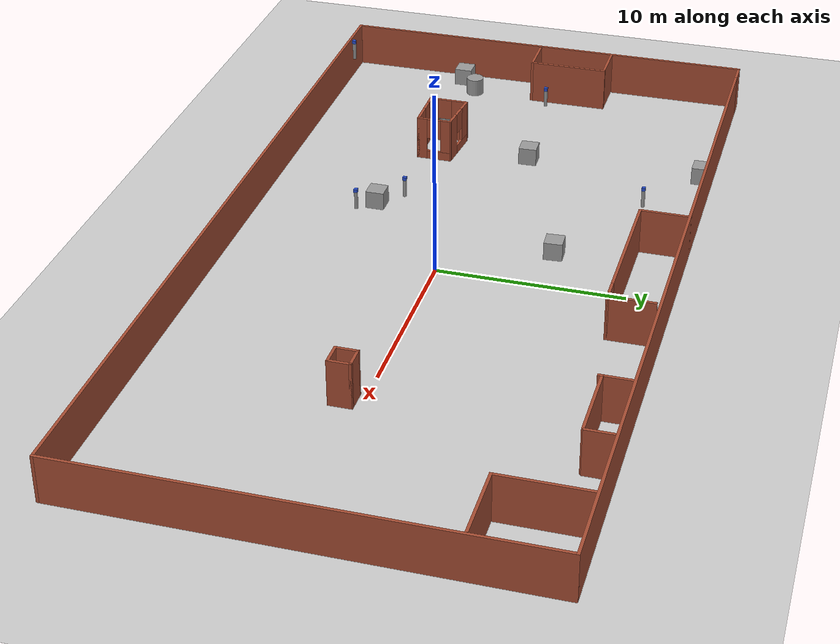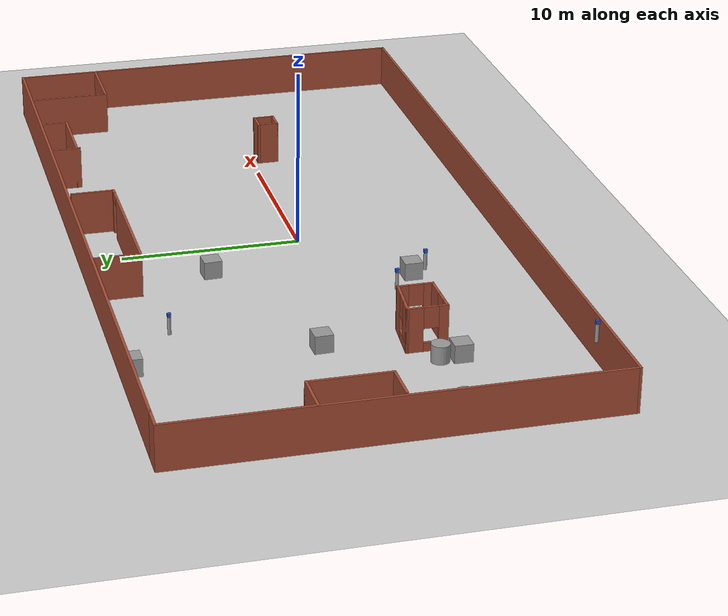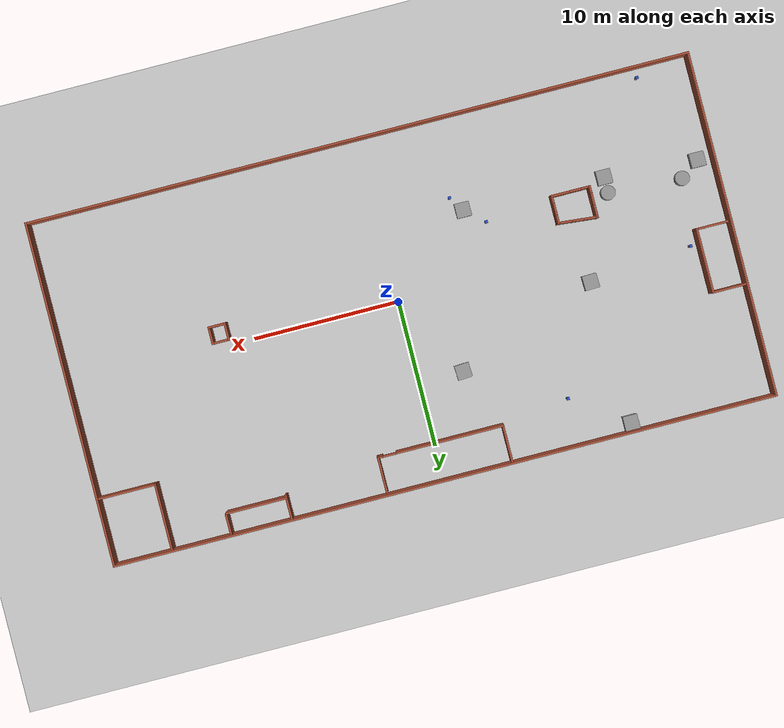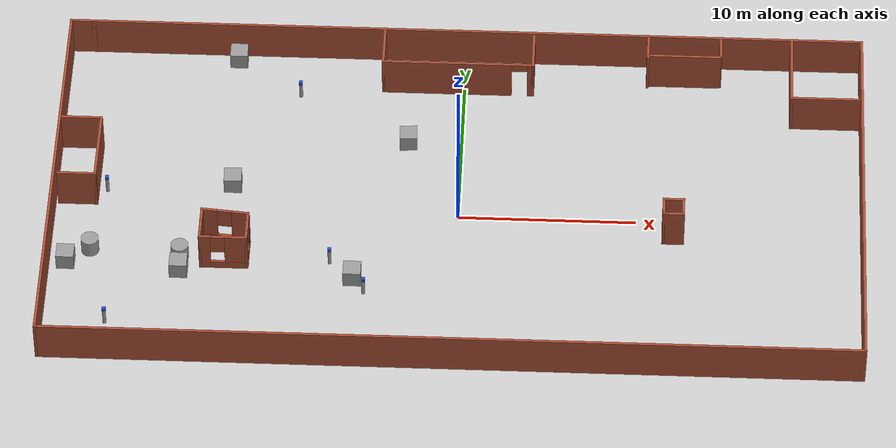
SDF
<sdf version="1.7">
 <world name="simulate_indoor">
  <model name="ground_plane">
   <static>1</static>
   <link name="link">
    <collision name="collision">
     <geometry><plane><normal>0 0 1</normal><size>100 100</size></plane></geometry>
     <surface>
      <contact><collide_bitmask>65535</collide_bitmask></contact>
      <friction><ode><mu>100</mu><mu2>50</mu2></ode></friction>
     </surface>
    </collision>
    <visual name="visual">
     <cast_shadows>0</cast_shadows>
     <geometry><plane><normal>0 0 1</normal><size>100 100</size></plane></geometry>
     <material>
      <script><uri>file://media/materials/scripts/gazebo.material</uri><name>Gazebo/Grey</name></script>
     </material>
    </visual>
   </link>
  </model>
  <model name="building_3">
   <pose>-0.060718 0.5346 0 0 -0 0</pose>
   <link name="Wall_0">
    <collision name="Wall_0_Collision">
     <geometry><box><size>44.5 0.15 2.5</size></box></geometry>
     <pose>0 0 1.25 0 -0 0</pose>
    </collision>
    <visual name="Wall_0_Visual">
     <pose>0 0 1.25 0 -0 0</pose>
     <geometry><box><size>44.5 0.15 2.5</size></box></geometry>
     <material>
      <script><uri>file://media/materials/scripts/gazebo.material</uri><name>Gazebo/Bricks</name></script>
      <ambient>1 1 1 1</ambient>
     </material>
     <meta><layer>0</layer></meta>
    </visual>
    <pose>0.624999 11.8 0 0 -0 0</pose>
   </link>
   <link name="Wall_1">
    <collision name="Wall_1_Collision">
     <geometry><box><size>23.75 0.15 2.5</size></box></geometry>
     <pose>0 0 1.25 0 -0 0</pose>
    </collision>
    <visual name="Wall_1_Visual">
     <pose>0 0 1.25 0 -0 0</pose>
     <geometry><box><size>23.75 0.15 2.5</size></box></geometry>
     <material>
      <script><uri>file://media/materials/scripts/gazebo.material</uri><name>Gazebo/Bricks</name></script>
      <ambient>1 1 1 1</ambient>
     </material>
     <meta><layer>0</layer></meta>
    </visual>
    <pose>22.8 0 0 0 -0 -1.5708</pose>
   </link>
   <link name="Wall_10">
    <collision name="Wall_10_Collision">
     <geometry><box><size>2.5 0.15 2.5</size></box></geometry>
     <pose>0 0 1.25 0 -0 0</pose>
    </collision>
    <visual name="Wall_10_Visual">
     <pose>0 0 1.25 0 -0 0</pose>
     <geometry><box><size>2.5 0.15 2.5</size></box></geometry>
     <material>
      <script><uri>file://media/materials/scripts/gazebo.material</uri><name>Gazebo/Bricks</name></script>
      <ambient>1 1 1 1</ambient>
     </material>
     <meta><layer>0</layer></meta>
    </visual>
    <pose>3.95679 10.375 0 0 -0 1.5708</pose>
   </link>
   <link name="Wall_17">
    <collision name="Wall_17_Collision">
     <geometry><box><size>4.75 0.15 2.5</size></box></geometry>
     <pose>0 0 1.25 0 -0 0</pose>
    </collision>
    <visual name="Wall_17_Visual">
     <pose>0 0 1.25 0 -0 0</pose>
     <geometry><box><size>4.75 0.15 2.5</size></box></geometry>
     <material>
      <script><uri>file://media/materials/scripts/gazebo.material</uri><name>Gazebo/Bricks</name></script>
      <ambient>1 1 1 1</ambient>
     </material>
     <meta><layer>0</layer></meta>
    </visual>
    <pose>18.7909 9.5 0 0 -0 -1.5708</pose>
   </link>
   <link name="Wall_18">
    <collision name="Wall_18_Collision">
     <geometry><box><size>4 0.15 2.5</size></box></geometry>
     <pose>0 0 1.25 0 -0 0</pose>
    </collision>
    <visual name="Wall_18_Visual">
     <pose>0 0 1.25 0 -0 0</pose>
     <geometry><box><size>4 0.15 2.5</size></box></geometry>
     <material>
      <script><uri>file://media/materials/scripts/gazebo.material</uri><name>Gazebo/Bricks</name></script>
      <ambient>1 1 1 1</ambient>
     </material>
     <meta><layer>0</layer></meta>
    </visual>
    <pose>20.7159 7.2 0 0 -0 0</pose>
   </link>
   <link name="Wall_2">
    <collision name="Wall_2_Collision">
     <geometry><box><size>45.75 0.15 2.5</size></box></geometry>
     <pose>0 0 1.25 0 -0 0</pose>
    </collision>
    <visual name="Wall_2_Visual">
     <pose>0 0 1.25 0 -0 0</pose>
     <geometry><box><size>45.75 0.15 2.5</size></box></geometry>
     <material>
      <script><uri>file://media/materials/scripts/gazebo.material</uri><name>Gazebo/Bricks</name></script>
      <ambient>1 1 1 1</ambient>
     </material>
     <meta><layer>0</layer></meta>
    </visual>
    <pose>-1e-06 -11.8 0 0 -0 3.14159</pose>
   </link>
   <link name="Wall_20">
    <pose>-14.2202 -3.74918 0 0 -0 -1.5708</pose>
    <visual name="Wall_20_Visual_0">
     <pose>-0.663415 0 1.25 0 -0 0</pose>
     <geometry><box><size>0.92317 0.15 2.5</size></box></geometry>
     <material>
      <script><uri>file://media/materials/scripts/gazebo.material</uri><name>Gazebo/Bricks</name></script>
      <ambient>1 1 1 1</ambient>
     </material>
     <meta><layer>0</layer></meta>
    </visual>
    <collision name="Wall_20_Collision_0">
     <geometry><box><size>0.92317 0.15 2.5</size></box></geometry>
     <pose>-0.663415 0 1.25 0 -0 0</pose>
    </collision>
    <visual name="Wall_20_Visual_1">
     <pose>0.461585 0 0.25 0 -0 0</pose>
     <geometry><box><size>1.32683 0.15 0.5</size></box></geometry>
     <material>
      <script><uri>file://media/materials/scripts/gazebo.material</uri><name>Gazebo/Bricks</name></script>
      <ambient>1 1 1 1</ambient>
     </material>
     <meta><layer>0</layer></meta>
    </visual>
    <collision name="Wall_20_Collision_1">
     <geometry><box><size>1.32683 0.15 0.5</size></box></geometry>
     <pose>0.461585 0 0.25 0 -0 0</pose>
    </collision>
    <visual name="Wall_20_Visual_2">
     <pose>0.861585 0 1.5 0 -0 0</pose>
     <geometry><box><size>0.52683 0.15 2</size></box></geometry>
     <material>
      <script><uri>file://media/materials/scripts/gazebo.material</uri><name>Gazebo/Bricks</name></script>
      <ambient>1 1 1 1</ambient>
     </material>
     <meta><layer>0</layer></meta>
    </visual>
    <collision name="Wall_20_Collision_2">
     <geometry><box><size>0.52683 0.15 2</size></box></geometry>
     <pose>0.861585 0 1.5 0 -0 0</pose>
    </collision>
    <visual name="Wall_20_Visual_3">
     <pose>0.19817 0 1.9 0 -0 0</pose>
     <geometry><box><size>0.8 0.15 1.2</size></box></geometry>
     <material>
      <script><uri>file://media/materials/scripts/gazebo.material</uri><name>Gazebo/Bricks</name></script>
      <ambient>1 1 1 1</ambient>
     </material>
     <meta><layer>0</layer></meta>
    </visual>
    <collision name="Wall_20_Collision_3">
     <geometry><box><size>0.8 0.15 1.2</size></box></geometry>
     <pose>0.19817 0 1.9 0 -0 0</pose>
    </collision>
   </link>
   <link name="Wall_21">
    <pose>-12.9202 -4.79918 0 0 -0 0</pose>
    <visual name="Wall_21_Visual_0">
     <pose>-1.04504 0 1.25 0 -0 0</pose>
     <geometry><box><size>0.659914 0.15 2.5</size></box></geometry>
     <material>
      <script><uri>file://media/materials/scripts/gazebo.material</uri><name>Gazebo/Bricks</name></script>
      <ambient>1 1 1 1</ambient>
     </material>
     <meta><layer>0</layer></meta>
    </visual>
    <collision name="Wall_21_Collision_0">
     <geometry><box><size>0.659914 0.15 2.5</size></box></geometry>
     <pose>-1.04504 0 1.25 0 -0 0</pose>
    </collision>
    <visual name="Wall_21_Visual_1">
     <pose>0.329957 0 0.25 0 -0 0</pose>
     <geometry><box><size>2.09009 0.15 0.5</size></box></geometry>
     <material>
      <script><uri>file://media/materials/scripts/gazebo.material</uri><name>Gazebo/Bricks</name></script>
      <ambient>1 1 1 1</ambient>
     </material>
     <meta><layer>0</layer></meta>
    </visual>
    <collision name="Wall_21_Collision_1">
     <geometry><box><size>2.09009 0.15 0.5</size></box></geometry>
     <pose>0.329957 0 0.25 0 -0 0</pose>
    </collision>
    <visual name="Wall_21_Visual_2">
     <pose>0.729957 0 1.5 0 -0 0</pose>
     <geometry><box><size>1.29009 0.15 2</size></box></geometry>
     <material>
      <script><uri>file://media/materials/scripts/gazebo.material</uri><name>Gazebo/Bricks</name></script>
      <ambient>1 1 1 1</ambient>
     </material>
     <meta><layer>0</layer></meta>
    </visual>
    <collision name="Wall_21_Collision_2">
     <geometry><box><size>1.29009 0.15 2</size></box></geometry>
     <pose>0.729957 0 1.5 0 -0 0</pose>
    </collision>
    <visual name="Wall_21_Visual_3">
     <pose>-0.315086 0 1.9 0 -0 0</pose>
     <geometry><box><size>0.8 0.15 1.2</size></box></geometry>
     <material>
      <script><uri>file://media/materials/scripts/gazebo.material</uri><name>Gazebo/Bricks</name></script>
      <ambient>1 1 1 1</ambient>
     </material>
     <meta><layer>0</layer></meta>
    </visual>
    <collision name="Wall_21_Collision_3">
     <geometry><box><size>0.8 0.15 1.2</size></box></geometry>
     <pose>-0.315086 0 1.9 0 -0 0</pose>
    </collision>
   </link>
   <link name="Wall_22">
    <pose>-11.6202 -3.87418 0 0 -0 1.5708</pose>
    <visual name="Wall_22_Visual_0">
     <pose>-0.715325 0 1.25 0 -0 0</pose>
     <geometry><box><size>0.569349 0.15 2.5</size></box></geometry>
     <material>
      <script><uri>file://media/materials/scripts/gazebo.material</uri><name>Gazebo/Bricks</name></script>
      <ambient>1 1 1 1</ambient>
     </material>
     <meta><layer>0</layer></meta>
    </visual>
    <collision name="Wall_22_Collision_0">
     <geometry><box><size>0.569349 0.15 2.5</size></box></geometry>
     <pose>-0.715325 0 1.25 0 -0 0</pose>
    </collision>
    <visual name="Wall_22_Visual_1">
     <pose>0.284675 0 0.25 0 -0 0</pose>
     <geometry><box><size>1.43065 0.15 0.5</size></box></geometry>
     <material>
      <script><uri>file://media/materials/scripts/gazebo.material</uri><name>Gazebo/Bricks</name></script>
      <ambient>1 1 1 1</ambient>
     </material>
     <meta><layer>0</layer></meta>
    </visual>
    <collision name="Wall_22_Collision_1">
     <geometry><box><size>1.43065 0.15 0.5</size></box></geometry>
     <pose>0.284675 0 0.25 0 -0 0</pose>
    </collision>
    <visual name="Wall_22_Visual_2">
     <pose>0.684675 0 1.5 0 -0 0</pose>
     <geometry><box><size>0.630651 0.15 2</size></box></geometry>
     <material>
      <script><uri>file://media/materials/scripts/gazebo.material</uri><name>Gazebo/Bricks</name></script>
      <ambient>1 1 1 1</ambient>
     </material>
     <meta><layer>0</layer></meta>
    </visual>
    <collision name="Wall_22_Collision_2">
     <geometry><box><size>0.630651 0.15 2</size></box></geometry>
     <pose>0.684675 0 1.5 0 -0 0</pose>
    </collision>
    <visual name="Wall_22_Visual_3">
     <pose>-0.030651 0 1.9 0 -0 0</pose>
     <geometry><box><size>0.8 0.15 1.2</size></box></geometry>
     <material>
      <script><uri>file://media/materials/scripts/gazebo.material</uri><name>Gazebo/Bricks</name></script>
      <ambient>1 1 1 1</ambient>
     </material>
     <meta><layer>0</layer></meta>
    </visual>
    <collision name="Wall_22_Collision_3">
     <geometry><box><size>0.8 0.15 1.2</size></box></geometry>
     <pose>-0.030651 0 1.9 0 -0 0</pose>
    </collision>
   </link>
   <link name="Wall_23">
    <pose>-12.9202 -2.82418 0 0 -0 3.04573</pose>
    <visual name="Wall_23_Visual_0">
     <pose>-0.870697 0 1.25 0 -0 0</pose>
     <geometry><box><size>1.0206 0.15 2.5</size></box></geometry>
     <material>
      <script><uri>file://media/materials/scripts/gazebo.material</uri><name>Gazebo/Bricks</name></script>
      <ambient>1 1 1 1</ambient>
     </material>
     <meta><layer>0</layer></meta>
    </visual>
    <collision name="Wall_23_Collision_0">
     <geometry><box><size>1.0206 0.15 2.5</size></box></geometry>
     <pose>-0.870697 0 1.25 0 -0 0</pose>
    </collision>
    <visual name="Wall_23_Visual_1">
     <pose>0.510298 0 0.25 0 -0 0</pose>
     <geometry><box><size>1.7414 0.15 0.5</size></box></geometry>
     <material>
      <script><uri>file://media/materials/scripts/gazebo.material</uri><name>Gazebo/Bricks</name></script>
      <ambient>1 1 1 1</ambient>
     </material>
     <meta><layer>0</layer></meta>
    </visual>
    <collision name="Wall_23_Collision_1">
     <geometry><box><size>1.7414 0.15 0.5</size></box></geometry>
     <pose>0.510298 0 0.25 0 -0 0</pose>
    </collision>
    <visual name="Wall_23_Visual_2">
     <pose>0.910298 0 1.5 0 -0 0</pose>
     <geometry><box><size>0.941395 0.15 2</size></box></geometry>
     <material>
      <script><uri>file://media/materials/scripts/gazebo.material</uri><name>Gazebo/Bricks</name></script>
      <ambient>1 1 1 1</ambient>
     </material>
     <meta><layer>0</layer></meta>
    </visual>
    <collision name="Wall_23_Collision_2">
     <geometry><box><size>0.941395 0.15 2</size></box></geometry>
     <pose>0.910298 0 1.5 0 -0 0</pose>
    </collision>
    <visual name="Wall_23_Visual_3">
     <pose>0.039601 0 1.9 0 -0 0</pose>
     <geometry><box><size>0.8 0.15 1.2</size></box></geometry>
     <material>
      <script><uri>file://media/materials/scripts/gazebo.material</uri><name>Gazebo/Bricks</name></script>
      <ambient>1 1 1 1</ambient>
     </material>
     <meta><layer>0</layer></meta>
    </visual>
    <collision name="Wall_23_Collision_3">
     <geometry><box><size>0.8 0.15 1.2</size></box></geometry>
     <pose>0.039601 0 1.9 0 -0 0</pose>
    </collision>
   </link>
   <link name="Wall_25">
    <collision name="Wall_25_Collision">
     <geometry><box><size>1.25 0.15 2.5</size></box></geometry>
     <pose>0 0 1.25 0 -0 0</pose>
    </collision>
    <visual name="Wall_25_Visual">
     <pose>0 0 1.25 0 -0 0</pose>
     <geometry><box><size>1.25 0.15 2.5</size></box></geometry>
     <material>
      <script><uri>file://media/materials/scripts/gazebo.material</uri><name>Gazebo/Bricks</name></script>
      <ambient>1 1 1 1</ambient>
     </material>
     <meta><layer>0</layer></meta>
    </visual>
    <pose>11.6215 -1.48359 0 0 -0 -1.5708</pose>
   </link>
   <link name="Wall_26">
    <collision name="Wall_26_Collision">
     <geometry><box><size>1.25 0.15 2.5</size></box></geometry>
     <pose>0 0 1.25 0 -0 0</pose>
    </collision>
    <visual name="Wall_26_Visual">
     <pose>0 0 1.25 0 -0 0</pose>
     <geometry><box><size>1.25 0.15 2.5</size></box></geometry>
     <material>
      <script><uri>file://media/materials/scripts/gazebo.material</uri><name>Gazebo/Bricks</name></script>
      <ambient>1 1 1 1</ambient>
     </material>
     <meta><layer>0</layer></meta>
    </visual>
    <pose>12.1715 -2.0336 0 0 -0 0</pose>
   </link>
   <link name="Wall_27">
    <collision name="Wall_27_Collision">
     <geometry><box><size>1.25 0.15 2.5</size></box></geometry>
     <pose>0 0 1.25 0 -0 0</pose>
    </collision>
    <visual name="Wall_27_Visual">
     <pose>0 0 1.25 0 -0 0</pose>
     <geometry><box><size>1.25 0.15 2.5</size></box></geometry>
     <material>
      <script><uri>file://media/materials/scripts/gazebo.material</uri><name>Gazebo/Bricks</name></script>
      <ambient>1 1 1 1</ambient>
     </material>
     <meta><layer>0</layer></meta>
    </visual>
    <pose>12.7215 -1.48359 0 0 -0 1.5708</pose>
   </link>
   <link name="Wall_28">
    <collision name="Wall_28_Collision">
     <geometry><box><size>1.25 0.15 2.5</size></box></geometry>
     <pose>0 0 1.25 0 -0 0</pose>
    </collision>
    <visual name="Wall_28_Visual">
     <pose>0 0 1.25 0 -0 0</pose>
     <geometry><box><size>1.25 0.15 2.5</size></box></geometry>
     <material>
      <script><uri>file://media/materials/scripts/gazebo.material</uri><name>Gazebo/Bricks</name></script>
      <ambient>1 1 1 1</ambient>
     </material>
     <meta><layer>0</layer></meta>
    </visual>
    <pose>12.1715 -0.933595 0 0 -0 3.14159</pose>
   </link>
   <link name="Wall_3">
    <collision name="Wall_3_Collision">
     <geometry><box><size>23.75 0.15 2.5</size></box></geometry>
     <pose>0 0 1.25 0 -0 0</pose>
    </collision>
    <visual name="Wall_3_Visual">
     <pose>0 0 1.25 0 -0 0</pose>
     <geometry><box><size>23.75 0.15 2.5</size></box></geometry>
     <material>
      <script><uri>file://media/materials/scripts/gazebo.material</uri><name>Gazebo/Bricks</name></script>
      <ambient>1 1 1 1</ambient>
     </material>
     <meta><layer>0</layer></meta>
    </visual>
    <pose>-22.8 0 0 0 -0 1.5708</pose>
   </link>
   <link name="Wall_4">
    <collision name="Wall_4_Collision">
     <geometry><box><size>1.5 0.15 2.5</size></box></geometry>
     <pose>0 0 1.25 0 -0 0</pose>
    </collision>
    <visual name="Wall_4_Visual">
     <pose>0 0 1.25 0 -0 0</pose>
     <geometry><box><size>1.5 0.15 2.5</size></box></geometry>
     <material>
      <script><uri>file://media/materials/scripts/gazebo.material</uri><name>Gazebo/Bricks</name></script>
      <ambient>1 1 1 1</ambient>
     </material>
     <meta><layer>0</layer></meta>
    </visual>
    <pose>-22.125 11.8 0 0 -0 0</pose>
   </link>
   <link name="Wall_8">
    <collision name="Wall_8_Collision">
     <geometry><box><size>2.75 0.15 2.5</size></box></geometry>
     <pose>0 0 1.25 0 -0 0</pose>
    </collision>
    <visual name="Wall_8_Visual">
     <pose>0 0 1.25 0 -0 0</pose>
     <geometry><box><size>2.75 0.15 2.5</size></box></geometry>
     <material>
      <script><uri>file://media/materials/scripts/gazebo.material</uri><name>Gazebo/Bricks</name></script>
      <ambient>1 1 1 1</ambient>
     </material>
     <meta><layer>0</layer></meta>
    </visual>
    <pose>-4.64321 10.5 0 0 -0 -1.5708</pose>
   </link>
   <link name="Wall_9">
    <pose>-0.343211 9.2 0 0 -0 0</pose>
    <visual name="Wall_9_Visual_0">
     <pose>-0.647828 0 1.25 0 -0 0</pose>
     <geometry><box><size>7.45434 0.15 2.5</size></box></geometry>
     <material>
      <script><uri>file://media/materials/scripts/gazebo.material</uri><name>Gazebo/Bricks</name></script>
      <ambient>1 1 1 1</ambient>
     </material>
     <meta><layer>0</layer></meta>
    </visual>
    <collision name="Wall_9_Collision_0">
     <geometry><box><size>7.45434 0.15 2.5</size></box></geometry>
     <pose>-0.647828 0 1.25 0 -0 0</pose>
    </collision>
    <visual name="Wall_9_Visual_1">
     <pose>4.17717 0 1.25 0 -0 0</pose>
     <geometry><box><size>0.395657 0.15 2.5</size></box></geometry>
     <material>
      <script><uri>file://media/materials/scripts/gazebo.material</uri><name>Gazebo/Bricks</name></script>
      <ambient>1 1 1 1</ambient>
     </material>
     <meta><layer>0</layer></meta>
    </visual>
    <collision name="Wall_9_Collision_1">
     <geometry><box><size>0.395657 0.15 2.5</size></box></geometry>
     <pose>4.17717 0 1.25 0 -0 0</pose>
    </collision>
    <visual name="Wall_9_Visual_2">
     <pose>3.52934 0 2.25 0 -0 0</pose>
     <geometry><box><size>0.9 0.15 0.5</size></box></geometry>
     <material>
      <script><uri>file://media/materials/scripts/gazebo.material</uri><name>Gazebo/Bricks</name></script>
      <ambient>1 1 1 1</ambient>
     </material>
     <meta><layer>0</layer></meta>
    </visual>
    <collision name="Wall_9_Collision_2">
     <geometry><box><size>0.9 0.15 0.5</size></box></geometry>
     <pose>3.52934 0 2.25 0 -0 0</pose>
    </collision>
   </link>
   <static>1</static>
  </model>
  <model name="UWB_0">
   <link name="link_1">
    <inertial>
     <mass>1</mass>
     <inertia><ixx>0.145833</ixx><ixy>0</ixy><ixz>0</ixz><iyy>0.145833</iyy><iyz>0</iyz><izz>0.125</izz></inertia>
    </inertial>
    <pose>0 0 0.5 0 -0 0</pose>
    <visual name="visual">
     <geometry><cylinder><radius>0.1</radius><length>1</length></cylinder></geometry>
     <material>
      <lighting>1</lighting>
      <script><uri>file://media/materials/scripts/gazebo.material</uri><name>Gazebo/Grey</name></script>
     </material>
    </visual>
    <collision name="collision">
     <geometry><cylinder><radius>0.1</radius><length>1</length></cylinder></geometry>
     <surface>
      <friction>
       <ode><mu>1</mu><mu2>1</mu2><fdir1>0 0 0</fdir1><slip1>0</slip1><slip2>0</slip2></ode>
       <torsional>
        <coefficient>1</coefficient>
        <patch_radius>0</patch_radius>
        <surface_radius>0</surface_radius>
        <use_patch_radius>1</use_patch_radius>
        <ode><slip>0</slip></ode>
       </torsional>
      </friction>
      <bounce><restitution_coefficient>0</restitution_coefficient><threshold>1e+06</threshold></bounce>
      <contact>
       <collide_without_contact>0</collide_without_contact>
       <collide_without_contact_bitmask>1</collide_without_contact_bitmask>
       <collide_bitmask>1</collide_bitmask>
       <ode>
        <soft_cfm>0</soft_cfm>
        <soft_erp>0.2</soft_erp>
        <kp>1e+13</kp>
        <kd>1</kd>
        <max_vel>0.01</max_vel>
        <min_depth>0</min_depth>
       </ode>
       <bullet>
        <split_impulse>1</split_impulse>
        <split_impulse_penetration_threshold>-0.01</split_impulse_penetration_threshold>
        <soft_cfm>0</soft_cfm>
        <soft_erp>0.2</soft_erp>
        <kp>1e+13</kp>
        <kd>1</kd>
       </bullet>
      </contact>
     </surface>
    </collision>
   </link>
   <link name="link_2">
    <inertial>
     <mass>1</mass>
     <inertia>
      <ixx>0.166667</ixx>
      <ixy>0</ixy>
      <ixz>0</ixz>
      <iyy>0.166667</iyy>
      <iyz>0</iyz>
      <izz>0.166667</izz>
     </inertia>
    </inertial>
    <pose>0 0 1.1 0 -0 0</pose>
    <visual name="visual">
     <geometry><box><size>0.2 0.2 0.2</size></box></geometry>
     <material>
      <lighting>1</lighting>
      <script><uri>file://media/materials/scripts/gazebo.material</uri><name>Gazebo/Blue</name></script>
      <shader type="vertex"><normal_map>__default__</normal_map></shader>
     </material>
    </visual>
    <collision name="collision">
     <geometry><box><size>0.2 0.2 0.2</size></box></geometry>
     <surface>
      <friction>
       <ode><mu>1</mu><mu2>1</mu2><fdir1>0 0 0</fdir1><slip1>0</slip1><slip2>0</slip2></ode>
       <torsional>
        <coefficient>1</coefficient>
        <patch_radius>0</patch_radius>
        <surface_radius>0</surface_radius>
        <use_patch_radius>1</use_patch_radius>
        <ode><slip>0</slip></ode>
       </torsional>
      </friction>
      <bounce><restitution_coefficient>0</restitution_coefficient><threshold>1e+06</threshold></bounce>
      <contact>
       <collide_without_contact>0</collide_without_contact>
       <collide_without_contact_bitmask>1</collide_without_contact_bitmask>
       <collide_bitmask>1</collide_bitmask>
       <ode>
        <soft_cfm>0</soft_cfm>
        <soft_erp>0.2</soft_erp>
        <kp>1e+13</kp>
        <kd>1</kd>
        <max_vel>0.01</max_vel>
        <min_depth>0</min_depth>
       </ode>
       <bullet>
        <split_impulse>1</split_impulse>
        <split_impulse_penetration_threshold>-0.01</split_impulse_penetration_threshold>
        <soft_cfm>0</soft_cfm>
        <soft_erp>0.2</soft_erp>
        <kp>1e+13</kp>
        <kd>1</kd>
       </bullet>
      </contact>
     </surface>
    </collision>
   </link>
   <static>1</static>
   <pose>-19.0705 -10.4583 2.04937 0 -0 0</pose>
  </model>
  <model name="UWB_3">
   <link name="link_1">
    <inertial>
     <mass>1</mass>
     <inertia><ixx>0.145833</ixx><ixy>0</ixy><ixz>0</ixz><iyy>0.145833</iyy><iyz>0</iyz><izz>0.125</izz></inertia>
    </inertial>
    <pose>0 0 0.5 0 -0 0</pose>
    <visual name="visual">
     <geometry><cylinder><radius>0.1</radius><length>1</length></cylinder></geometry>
     <material>
      <lighting>1</lighting>
      <script><uri>file://media/materials/scripts/gazebo.material</uri><name>Gazebo/Grey</name></script>
     </material>
    </visual>
    <collision name="collision">
     <geometry><cylinder><radius>0.1</radius><length>1</length></cylinder></geometry>
     <surface>
      <friction>
       <ode><mu>1</mu><mu2>1</mu2><fdir1>0 0 0</fdir1><slip1>0</slip1><slip2>0</slip2></ode>
       <torsional>
        <coefficient>1</coefficient>
        <patch_radius>0</patch_radius>
        <surface_radius>0</surface_radius>
        <use_patch_radius>1</use_patch_radius>
        <ode><slip>0</slip></ode>
       </torsional>
      </friction>
      <bounce><restitution_coefficient>0</restitution_coefficient><threshold>1e+06</threshold></bounce>
      <contact>
       <collide_without_contact>0</collide_without_contact>
       <collide_without_contact_bitmask>1</collide_without_contact_bitmask>
       <collide_bitmask>1</collide_bitmask>
       <ode>
        <soft_cfm>0</soft_cfm>
        <soft_erp>0.2</soft_erp>
        <kp>1e+13</kp>
        <kd>1</kd>
        <max_vel>0.01</max_vel>
        <min_depth>0</min_depth>
       </ode>
       <bullet>
        <split_impulse>1</split_impulse>
        <split_impulse_penetration_threshold>-0.01</split_impulse_penetration_threshold>
        <soft_cfm>0</soft_cfm>
        <soft_erp>0.2</soft_erp>
        <kp>1e+13</kp>
        <kd>1</kd>
       </bullet>
      </contact>
     </surface>
    </collision>
   </link>
   <link name="link_2">
    <inertial>
     <mass>1</mass>
     <inertia>
      <ixx>0.166667</ixx>
      <ixy>0</ixy>
      <ixz>0</ixz>
      <iyy>0.166667</iyy>
      <iyz>0</iyz>
      <izz>0.166667</izz>
     </inertia>
    </inertial>
    <pose>0 0 1.1 0 -0 0</pose>
    <visual name="visual">
     <geometry><box><size>0.2 0.2 0.2</size></box></geometry>
     <material>
      <lighting>1</lighting>
      <script><uri>file://media/materials/scripts/gazebo.material</uri><name>Gazebo/Blue</name></script>
      <shader type="vertex"><normal_map>__default__</normal_map></shader>
     </material>
    </visual>
    <collision name="collision">
     <geometry><box><size>0.2 0.2 0.2</size></box></geometry>
     <surface>
      <friction>
       <ode><mu>1</mu><mu2>1</mu2><fdir1>0 0 0</fdir1><slip1>0</slip1><slip2>0</slip2></ode>
       <torsional>
        <coefficient>1</coefficient>
        <patch_radius>0</patch_radius>
        <surface_radius>0</surface_radius>
        <use_patch_radius>1</use_patch_radius>
        <ode><slip>0</slip></ode>
       </torsional>
      </friction>
      <bounce><restitution_coefficient>0</restitution_coefficient><threshold>1e+06</threshold></bounce>
      <contact>
       <collide_without_contact>0</collide_without_contact>
       <collide_without_contact_bitmask>1</collide_without_contact_bitmask>
       <collide_bitmask>1</collide_bitmask>
       <ode>
        <soft_cfm>0</soft_cfm>
        <soft_erp>0.2</soft_erp>
        <kp>1e+13</kp>
        <kd>1</kd>
        <max_vel>0.01</max_vel>
        <min_depth>0</min_depth>
       </ode>
       <bullet>
        <split_impulse>1</split_impulse>
        <split_impulse_penetration_threshold>-0.01</split_impulse_penetration_threshold>
        <soft_cfm>0</soft_cfm>
        <soft_erp>0.2</soft_erp>
        <kp>1e+13</kp>
        <kd>1</kd>
       </bullet>
      </contact>
     </surface>
    </collision>
   </link>
   <static>1</static>
   <pose>-19.9487 1.28309 0 0 -0 0</pose>
  </model>
  <model name="unit_box_0">
   <pose>-15.4923 -4.67019 0.499995 1e-05 -0 0</pose>
   <link name="link">
    <inertial>
     <mass>1</mass>
     <inertia>
      <ixx>0.166667</ixx>
      <ixy>0</ixy>
      <ixz>0</ixz>
      <iyy>0.166667</iyy>
      <iyz>0</iyz>
      <izz>0.166667</izz>
     </inertia>
    </inertial>
    <collision name="collision"><geometry><box><size>1 1 1</size></box></geometry></collision>
    <visual name="visual">
     <geometry><box><size>1 1 1</size></box></geometry>
     <material>
      <script><name>Gazebo/Grey</name><uri>file://media/materials/scripts/gazebo.material</uri></script>
     </material>
    </visual>
   </link>
  </model>
  <model name="unit_cylinder_3">
   <pose>-15.4939 -3.57788 0.499996 -3e-06 3e-06 0</pose>
   <link name="link">
    <inertial>
     <mass>1</mass>
     <inertia><ixx>0.145833</ixx><ixy>0</ixy><ixz>0</ixz><iyy>0.145833</iyy><iyz>0</iyz><izz>0.125</izz></inertia>
    </inertial>
    <collision name="collision">
     <geometry><cylinder><radius>0.5</radius><length>1</length></cylinder></geometry>
    </collision>
    <visual name="visual">
     <geometry><cylinder><radius>0.5</radius><length>1</length></cylinder></geometry>
     <material>
      <script><name>Gazebo/Grey</name><uri>file://media/materials/scripts/gazebo.material</uri></script>
     </material>
    </visual>
   </link>
  </model>
  <model name="building_3_0">
   <pose>-4.0948 6.27094 0 0 -0 0</pose>
   <link name="Wall_11">
    <collision name="Wall_11_Collision">
     <geometry><box><size>4.5 0.15 2.5</size></box></geometry>
     <pose>0 0 1.25 0 -0 0</pose>
    </collision>
    <visual name="Wall_11_Visual">
     <pose>0 0 1.25 0 -0 0</pose>
     <geometry><box><size>4.5 0.15 2.5</size></box></geometry>
     <material>
      <script><uri>file://media/materials/scripts/gazebo.material</uri><name>Gazebo/Bricks</name></script>
      <ambient>1 1 1 1</ambient>
     </material>
     <meta><layer>0</layer></meta>
    </visual>
    <pose>-16.3987 -3.80717 0 0 -0 -1.5708</pose>
   </link>
   <link name="Wall_12">
    <collision name="Wall_12_Collision">
     <geometry><box><size>2.25 0.15 2.5</size></box></geometry>
     <pose>0 0 1.25 0 -0 0</pose>
    </collision>
    <visual name="Wall_12_Visual">
     <pose>0 0 1.25 0 -0 0</pose>
     <geometry><box><size>2.25 0.15 2.5</size></box></geometry>
     <material>
      <script><uri>file://media/materials/scripts/gazebo.material</uri><name>Gazebo/Bricks</name></script>
      <ambient>1 1 1 1</ambient>
     </material>
     <meta><layer>0</layer></meta>
    </visual>
    <pose>-17.4487 -5.98217 0 0 -0 3.14159</pose>
   </link>
   <link name="Wall_4">
    <collision name="Wall_4_Collision">
     <geometry><box><size>1.75 0.15 2.5</size></box></geometry>
     <pose>0 0 1.25 0 -0 0</pose>
    </collision>
    <visual name="Wall_4_Visual">
     <pose>0 0 1.25 0 -0 0</pose>
     <geometry><box><size>1.75 0.15 2.5</size></box></geometry>
     <material>
      <script><uri>file://media/materials/scripts/gazebo.material</uri><name>Gazebo/Bricks</name></script>
      <ambient>1 1 1 1</ambient>
     </material>
     <meta><layer>0</layer></meta>
    </visual>
    <pose>14.5779 5.18217 0 0 -0 1.5708</pose>
   </link>
   <link name="Wall_6">
    <collision name="Wall_6_Collision">
     <geometry><box><size>4.25 0.15 2.5</size></box></geometry>
     <pose>0 0 1.25 0 -0 0</pose>
    </collision>
    <visual name="Wall_6_Visual">
     <pose>0 0 1.25 0 -0 0</pose>
     <geometry><box><size>4.25 0.15 2.5</size></box></geometry>
     <material>
      <script><uri>file://media/materials/scripts/gazebo.material</uri><name>Gazebo/Bricks</name></script>
      <ambient>1 1 1 1</ambient>
     </material>
     <meta><layer>0</layer></meta>
    </visual>
    <pose>16.6279 4.52369 0 0 -0 0</pose>
   </link>
   <link name="Wall_7">
    <collision name="Wall_7_Collision">
     <geometry><box><size>1.46227 0.15 2.5</size></box></geometry>
     <pose>0 0 1.25 0 -0 0</pose>
    </collision>
    <visual name="Wall_7_Visual">
     <pose>0 0 1.25 0 -0 0</pose>
     <geometry><box><size>1.46227 0.15 2.5</size></box></geometry>
     <material>
      <script><uri>file://media/materials/scripts/gazebo.material</uri><name>Gazebo/Bricks</name></script>
      <ambient>1 1 1 1</ambient>
     </material>
     <meta><layer>0</layer></meta>
    </visual>
    <pose>18.7487 5.25058 0 0 -0 1.5708</pose>
   </link>
   <link name="Wall_9">
    <collision name="Wall_9_Collision">
     <geometry><box><size>2.5 0.15 2.5</size></box></geometry>
     <pose>0 0 1.25 0 -0 0</pose>
    </collision>
    <visual name="Wall_9_Visual">
     <pose>0 0 1.25 0 -0 0</pose>
     <geometry><box><size>2.5 0.15 2.5</size></box></geometry>
     <material>
      <script><uri>file://media/materials/scripts/gazebo.material</uri><name>Gazebo/Bricks</name></script>
      <ambient>1 1 1 1</ambient>
     </material>
     <meta><layer>0</layer></meta>
    </visual>
    <pose>-17.5737 -1.63217 0 0 -0 0</pose>
   </link>
   <static>1</static>
  </model>
  <model name="unit_cylinder_8">
   <pose>-20.5615 -3.27499 0.499996 4e-06 2e-06 -0</pose>
   <link name="link">
    <inertial>
     <mass>1</mass>
     <inertia><ixx>0.145833</ixx><ixy>0</ixy><ixz>0</ixz><iyy>0.145833</iyy><iyz>0</iyz><izz>0.125</izz></inertia>
    </inertial>
    <collision name="collision">
     <geometry><cylinder><radius>0.5</radius><length>1</length></cylinder></geometry>
    </collision>
    <visual name="visual">
     <geometry><cylinder><radius>0.5</radius><length>1</length></cylinder></geometry>
     <material>
      <script><name>Gazebo/Grey</name><uri>file://media/materials/scripts/gazebo.material</uri></script>
     </material>
    </visual>
   </link>
  </model>
  <model name="unit_box_7">
   <pose>-3.07321 5.60682 0.5 0 -0 0.052977</pose>
   <link name="link">
    <inertial>
     <mass>1</mass>
     <inertia>
      <ixx>0.166667</ixx>
      <ixy>0</ixy>
      <ixz>0</ixz>
      <iyy>0.166667</iyy>
      <iyz>0</iyz>
      <izz>0.166667</izz>
     </inertia>
    </inertial>
    <collision name="collision"><geometry><box><size>1 1 1</size></box></geometry></collision>
    <visual name="visual">
     <geometry><box><size>1 1 1</size></box></geometry>
     <material>
      <script><name>Gazebo/Grey</name><uri>file://media/materials/scripts/gazebo.material</uri></script>
     </material>
    </visual>
   </link>
  </model>
  <model name="unit_box_9">
   <pose>-5.75758 -4.91183 0.499995 1e-05 -0 0</pose>
   <link name="link">
    <inertial>
     <mass>1</mass>
     <inertia>
      <ixx>0.166667</ixx>
      <ixy>0</ixy>
      <ixz>0</ixz>
      <iyy>0.166667</iyy>
      <iyz>0</iyz>
      <izz>0.166667</izz>
     </inertia>
    </inertial>
    <collision name="collision"><geometry><box><size>1 1 1</size></box></geometry></collision>
    <visual name="visual">
     <geometry><box><size>1 1 1</size></box></geometry>
     <material>
      <script><name>Gazebo/Grey</name><uri>file://media/materials/scripts/gazebo.material</uri></script>
     </material>
    </visual>
   </link>
  </model>
  <model name="unit_box_10">
   <pose>-13.1483 11.7596 0.499996 -7e-06 -0 -2e-06</pose>
   <link name="link">
    <inertial>
     <mass>1</mass>
     <inertia>
      <ixx>0.166667</ixx>
      <ixy>0</ixy>
      <ixz>0</ixz>
      <iyy>0.166667</iyy>
      <iyz>0</iyz>
      <izz>0.166667</izz>
     </inertia>
    </inertial>
    <collision name="collision"><geometry><box><size>1 1 1</size></box></geometry></collision>
    <visual name="visual">
     <geometry><box><size>1 1 1</size></box></geometry>
     <material>
      <script><name>Gazebo/Grey</name><uri>file://media/materials/scripts/gazebo.material</uri></script>
     </material>
    </visual>
   </link>
  </model>
  <model name="unit_box_11">
   <pose>-21.8609 -4.24346 0.499995 1e-05 -0 0</pose>
   <link name="link">
    <inertial>
     <mass>1</mass>
     <inertia>
      <ixx>0.166667</ixx>
      <ixy>0</ixy>
      <ixz>0</ixz>
      <iyy>0.166667</iyy>
      <iyz>0</iyz>
      <izz>0.166667</izz>
     </inertia>
    </inertial>
    <collision name="collision"><geometry><box><size>1 1 1</size></box></geometry></collision>
    <visual name="visual">
     <geometry><box><size>1 1 1</size></box></geometry>
     <material>
      <script><name>Gazebo/Grey</name><uri>file://media/materials/scripts/gazebo.material</uri></script>
     </material>
    </visual>
   </link>
  </model>
  <model name="unit_box">
   <pose>-12.8693 1.92193 0.499995 1e-05 -0 0.02979</pose>
   <link name="link">
    <inertial>
     <mass>1</mass>
     <inertia>
      <ixx>0.166667</ixx>
      <ixy>0</ixy>
      <ixz>0</ixz>
      <iyy>0.166667</iyy>
      <iyz>0</iyz>
      <izz>0.166667</izz>
     </inertia>
    </inertial>
    <collision name="collision"><geometry><box><size>1 1 1</size></box></geometry></collision>
    <visual name="visual">
     <geometry><box><size>1 1 1</size></box></geometry>
     <material>
      <script><name>Gazebo/Grey</name><uri>file://media/materials/scripts/gazebo.material</uri></script>
     </material>
    </visual>
   </link>
  </model>
  <model name="UWB_2_clone">
   <link name="link_1">
    <inertial>
     <mass>1</mass>
     <inertia><ixx>0.145833</ixx><ixy>0</ixy><ixz>0</ixz><iyy>0.145833</iyy><iyz>0</iyz><izz>0.125</izz></inertia>
    </inertial>
    <pose>0 0 0.5 0 -0 0</pose>
    <visual name="visual">
     <geometry><cylinder><radius>0.1</radius><length>1</length></cylinder></geometry>
     <material>
      <lighting>1</lighting>
      <script><uri>file://media/materials/scripts/gazebo.material</uri><name>Gazebo/Grey</name></script>
     </material>
    </visual>
    <collision name="collision">
     <geometry><cylinder><radius>0.1</radius><length>1</length></cylinder></geometry>
     <surface>
      <friction>
       <ode><mu>1</mu><mu2>1</mu2><fdir1>0 0 0</fdir1><slip1>0</slip1><slip2>0</slip2></ode>
       <torsional>
        <coefficient>1</coefficient>
        <patch_radius>0</patch_radius>
        <surface_radius>0</surface_radius>
        <use_patch_radius>1</use_patch_radius>
        <ode><slip>0</slip></ode>
       </torsional>
      </friction>
      <bounce><restitution_coefficient>0</restitution_coefficient><threshold>1e+06</threshold></bounce>
      <contact>
       <collide_without_contact>0</collide_without_contact>
       <collide_without_contact_bitmask>1</collide_without_contact_bitmask>
       <collide_bitmask>1</collide_bitmask>
       <ode>
        <soft_cfm>0</soft_cfm>
        <soft_erp>0.2</soft_erp>
        <kp>1e+13</kp>
        <kd>1</kd>
        <max_vel>0.01</max_vel>
        <min_depth>0</min_depth>
       </ode>
       <bullet>
        <split_impulse>1</split_impulse>
        <split_impulse_penetration_threshold>-0.01</split_impulse_penetration_threshold>
        <soft_cfm>0</soft_cfm>
        <soft_erp>0.2</soft_erp>
        <kp>1e+13</kp>
        <kd>1</kd>
       </bullet>
      </contact>
     </surface>
    </collision>
   </link>
   <link name="link_2">
    <inertial>
     <mass>1</mass>
     <inertia>
      <ixx>0.166667</ixx>
      <ixy>0</ixy>
      <ixz>0</ixz>
      <iyy>0.166667</iyy>
      <iyz>0</iyz>
      <izz>0.166667</izz>
     </inertia>
    </inertial>
    <pose>0 0 1.1 0 -0 0</pose>
    <visual name="visual">
     <geometry><box><size>0.2 0.2 0.2</size></box></geometry>
     <material>
      <lighting>1</lighting>
      <script><uri>file://media/materials/scripts/gazebo.material</uri><name>Gazebo/Blue</name></script>
      <shader type="vertex"><normal_map>__default__</normal_map></shader>
     </material>
    </visual>
    <collision name="collision">
     <geometry><box><size>0.2 0.2 0.2</size></box></geometry>
     <surface>
      <friction>
       <ode><mu>1</mu><mu2>1</mu2><fdir1>0 0 0</fdir1><slip1>0</slip1><slip2>0</slip2></ode>
       <torsional>
        <coefficient>1</coefficient>
        <patch_radius>0</patch_radius>
        <surface_radius>0</surface_radius>
        <use_patch_radius>1</use_patch_radius>
        <ode><slip>0</slip></ode>
       </torsional>
      </friction>
      <bounce><restitution_coefficient>0</restitution_coefficient><threshold>1e+06</threshold></bounce>
      <contact>
       <collide_without_contact>0</collide_without_contact>
       <collide_without_contact_bitmask>1</collide_without_contact_bitmask>
       <collide_bitmask>1</collide_bitmask>
       <ode>
        <soft_cfm>0</soft_cfm>
        <soft_erp>0.2</soft_erp>
        <kp>1e+13</kp>
        <kd>1</kd>
        <max_vel>0.01</max_vel>
        <min_depth>0</min_depth>
       </ode>
       <bullet>
        <split_impulse>1</split_impulse>
        <split_impulse_penetration_threshold>-0.01</split_impulse_penetration_threshold>
        <soft_cfm>0</soft_cfm>
        <soft_erp>0.2</soft_erp>
        <kp>1e+13</kp>
        <kd>1</kd>
       </bullet>
      </contact>
     </surface>
    </collision>
   </link>
   <static>1</static>
   <pose>-9.42283 9.13791 0 0 -0 0</pose>
  </model>
  <model name="UWB_2_clone_0">
   <link name="link_1">
    <inertial>
     <mass>1</mass>
     <inertia><ixx>0.145833</ixx><ixy>0</ixy><ixz>0</ixz><iyy>0.145833</iyy><iyz>0</iyz><izz>0.125</izz></inertia>
    </inertial>
    <pose>0 0 0.5 0 -0 0</pose>
    <visual name="visual">
     <geometry><cylinder><radius>0.1</radius><length>1</length></cylinder></geometry>
     <material>
      <lighting>1</lighting>
      <script><uri>file://media/materials/scripts/gazebo.material</uri><name>Gazebo/Grey</name></script>
     </material>
    </visual>
    <collision name="collision">
     <geometry><cylinder><radius>0.1</radius><length>1</length></cylinder></geometry>
     <surface>
      <friction>
       <ode><mu>1</mu><mu2>1</mu2><fdir1>0 0 0</fdir1><slip1>0</slip1><slip2>0</slip2></ode>
       <torsional>
        <coefficient>1</coefficient>
        <patch_radius>0</patch_radius>
        <surface_radius>0</surface_radius>
        <use_patch_radius>1</use_patch_radius>
        <ode><slip>0</slip></ode>
       </torsional>
      </friction>
      <bounce><restitution_coefficient>0</restitution_coefficient><threshold>1e+06</threshold></bounce>
      <contact>
       <collide_without_contact>0</collide_without_contact>
       <collide_without_contact_bitmask>1</collide_without_contact_bitmask>
       <collide_bitmask>1</collide_bitmask>
       <ode>
        <soft_cfm>0</soft_cfm>
        <soft_erp>0.2</soft_erp>
        <kp>1e+13</kp>
        <kd>1</kd>
        <max_vel>0.01</max_vel>
        <min_depth>0</min_depth>
       </ode>
       <bullet>
        <split_impulse>1</split_impulse>
        <split_impulse_penetration_threshold>-0.01</split_impulse_penetration_threshold>
        <soft_cfm>0</soft_cfm>
        <soft_erp>0.2</soft_erp>
        <kp>1e+13</kp>
        <kd>1</kd>
       </bullet>
      </contact>
     </surface>
    </collision>
   </link>
   <link name="link_2">
    <inertial>
     <mass>1</mass>
     <inertia>
      <ixx>0.166667</ixx>
      <ixy>0</ixy>
      <ixz>0</ixz>
      <iyy>0.166667</iyy>
      <iyz>0</iyz>
      <izz>0.166667</izz>
     </inertia>
    </inertial>
    <pose>0 0 1.1 0 -0 0</pose>
    <visual name="visual">
     <geometry><box><size>0.2 0.2 0.2</size></box></geometry>
     <material>
      <lighting>1</lighting>
      <script><uri>file://media/materials/scripts/gazebo.material</uri><name>Gazebo/Blue</name></script>
      <shader type="vertex"><normal_map>__default__</normal_map></shader>
     </material>
    </visual>
    <collision name="collision">
     <geometry><box><size>0.2 0.2 0.2</size></box></geometry>
     <surface>
      <friction>
       <ode><mu>1</mu><mu2>1</mu2><fdir1>0 0 0</fdir1><slip1>0</slip1><slip2>0</slip2></ode>
       <torsional>
        <coefficient>1</coefficient>
        <patch_radius>0</patch_radius>
        <surface_radius>0</surface_radius>
        <use_patch_radius>1</use_patch_radius>
        <ode><slip>0</slip></ode>
       </torsional>
      </friction>
      <bounce><restitution_coefficient>0</restitution_coefficient><threshold>1e+06</threshold></bounce>
      <contact>
       <collide_without_contact>0</collide_without_contact>
       <collide_without_contact_bitmask>1</collide_without_contact_bitmask>
       <collide_bitmask>1</collide_bitmask>
       <ode>
        <soft_cfm>0</soft_cfm>
        <soft_erp>0.2</soft_erp>
        <kp>1e+13</kp>
        <kd>1</kd>
        <max_vel>0.01</max_vel>
        <min_depth>0</min_depth>
       </ode>
       <bullet>
        <split_impulse>1</split_impulse>
        <split_impulse_penetration_threshold>-0.01</split_impulse_penetration_threshold>
        <soft_cfm>0</soft_cfm>
        <soft_erp>0.2</soft_erp>
        <kp>1e+13</kp>
        <kd>1</kd>
       </bullet>
      </contact>
     </surface>
    </collision>
   </link>
   <static>1</static>
   <pose>-7.0745 -3.72551 0 0 -0 0</pose>
  </model>
  <model name="UWB_2_clone_2">
   <link name="link_1">
    <inertial>
     <mass>1</mass>
     <inertia><ixx>0.145833</ixx><ixy>0</ixy><ixz>0</ixz><iyy>0.145833</iyy><iyz>0</iyz><izz>0.125</izz></inertia>
    </inertial>
    <pose>0 0 0.5 0 -0 0</pose>
    <visual name="visual">
     <geometry><cylinder><radius>0.1</radius><length>1</length></cylinder></geometry>
     <material>
      <lighting>1</lighting>
      <script><uri>file://media/materials/scripts/gazebo.material</uri><name>Gazebo/Grey</name></script>
     </material>
    </visual>
    <collision name="collision">
     <geometry><cylinder><radius>0.1</radius><length>1</length></cylinder></geometry>
     <surface>
      <friction>
       <ode><mu>1</mu><mu2>1</mu2><fdir1>0 0 0</fdir1><slip1>0</slip1><slip2>0</slip2></ode>
       <torsional>
        <coefficient>1</coefficient>
        <patch_radius>0</patch_radius>
        <surface_radius>0</surface_radius>
        <use_patch_radius>1</use_patch_radius>
        <ode><slip>0</slip></ode>
       </torsional>
      </friction>
      <bounce><restitution_coefficient>0</restitution_coefficient><threshold>1e+06</threshold></bounce>
      <contact>
       <collide_without_contact>0</collide_without_contact>
       <collide_without_contact_bitmask>1</collide_without_contact_bitmask>
       <collide_bitmask>1</collide_bitmask>
       <ode>
        <soft_cfm>0</soft_cfm>
        <soft_erp>0.2</soft_erp>
        <kp>1e+13</kp>
        <kd>1</kd>
        <max_vel>0.01</max_vel>
        <min_depth>0</min_depth>
       </ode>
       <bullet>
        <split_impulse>1</split_impulse>
        <split_impulse_penetration_threshold>-0.01</split_impulse_penetration_threshold>
        <soft_cfm>0</soft_cfm>
        <soft_erp>0.2</soft_erp>
        <kp>1e+13</kp>
        <kd>1</kd>
       </bullet>
      </contact>
     </surface>
    </collision>
   </link>
   <link name="link_2">
    <inertial>
     <mass>1</mass>
     <inertia>
      <ixx>0.166667</ixx>
      <ixy>0</ixy>
      <ixz>0</ixz>
      <iyy>0.166667</iyy>
      <iyz>0</iyz>
      <izz>0.166667</izz>
     </inertia>
    </inertial>
    <pose>0 0 1.1 0 -0 0</pose>
    <visual name="visual">
     <geometry><box><size>0.2 0.2 0.2</size></box></geometry>
     <material>
      <lighting>1</lighting>
      <script><uri>file://media/materials/scripts/gazebo.material</uri><name>Gazebo/Blue</name></script>
      <shader type="vertex"><normal_map>__default__</normal_map></shader>
     </material>
    </visual>
    <collision name="collision">
     <geometry><box><size>0.2 0.2 0.2</size></box></geometry>
     <surface>
      <friction>
       <ode><mu>1</mu><mu2>1</mu2><fdir1>0 0 0</fdir1><slip1>0</slip1><slip2>0</slip2></ode>
       <torsional>
        <coefficient>1</coefficient>
        <patch_radius>0</patch_radius>
        <surface_radius>0</surface_radius>
        <use_patch_radius>1</use_patch_radius>
        <ode><slip>0</slip></ode>
       </torsional>
      </friction>
      <bounce><restitution_coefficient>0</restitution_coefficient><threshold>1e+06</threshold></bounce>
      <contact>
       <collide_without_contact>0</collide_without_contact>
       <collide_without_contact_bitmask>1</collide_without_contact_bitmask>
       <collide_bitmask>1</collide_bitmask>
       <ode>
        <soft_cfm>0</soft_cfm>
        <soft_erp>0.2</soft_erp>
        <kp>1e+13</kp>
        <kd>1</kd>
        <max_vel>0.01</max_vel>
        <min_depth>0</min_depth>
       </ode>
       <bullet>
        <split_impulse>1</split_impulse>
        <split_impulse_penetration_threshold>-0.01</split_impulse_penetration_threshold>
        <soft_cfm>0</soft_cfm>
        <soft_erp>0.2</soft_erp>
        <kp>1e+13</kp>
        <kd>1</kd>
       </bullet>
      </contact>
     </surface>
    </collision>
   </link>
   <static>1</static>
   <pose>-5.08087 -5.89889 0 0 -0 0</pose>
  </model>
 </world>
</sdf>
